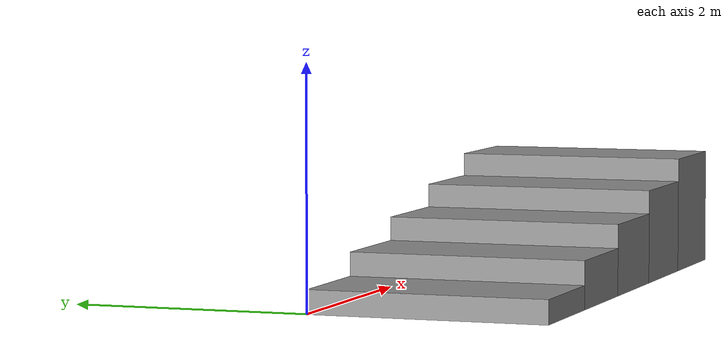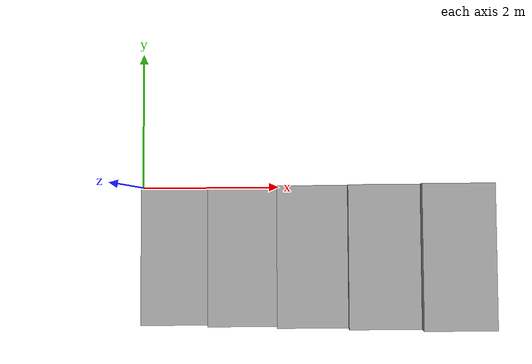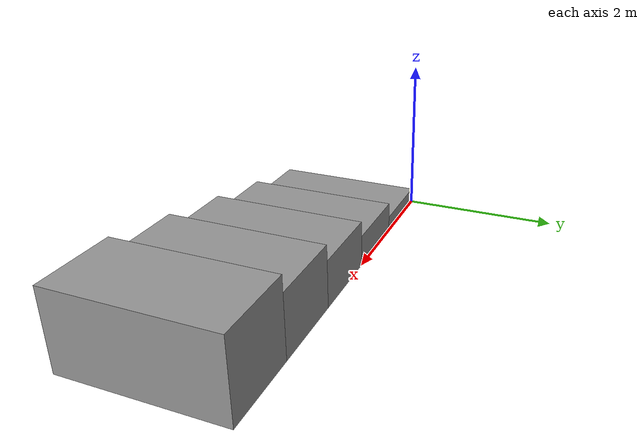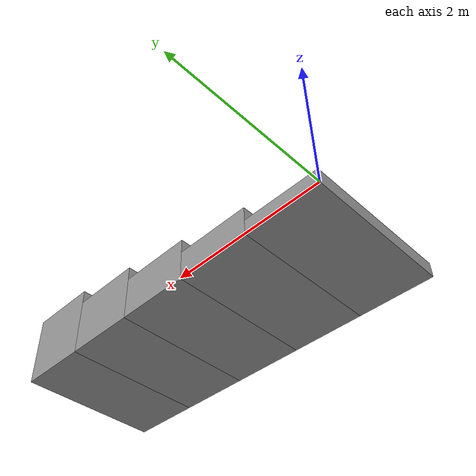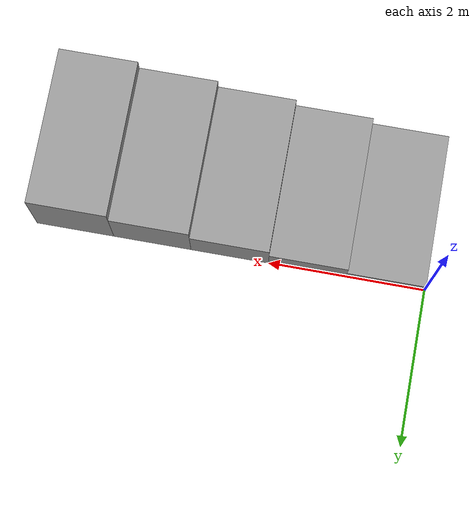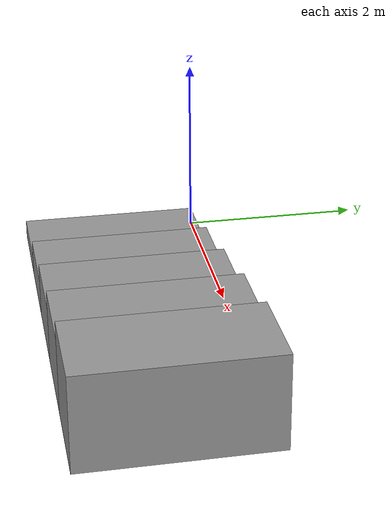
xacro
<?xml version="1.0" encoding="utf-8"?>

<robot xmlns:xacro="http://www.ros.org/wiki/xacro"  name="aaa">

  <xacro:include filename="$(find stairs_playground)/urdf/stairs_base.xacro"/>

  <xacro:arg name="stair_length" default = "1"   />
  <xacro:arg name="stair_width"  default = "2"   />
  <xacro:arg name="stair_height" default = "0.2" />
  <xacro:arg name="stair_num"    default = "5"   />

  <xacro:group_of_stairs num="5" stair_length="$(arg stair_length)" stair_width="$(arg stair_width)" stair_height="$(arg stair_height)"/>

</robot>

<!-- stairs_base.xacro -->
<robot xmlns:xacro="http://www.ros.org/wiki/xacro">

    <xacro:macro name="stairs" params="stairs xpos ypos zpos stair_length stair_width stair_height">

        <joint name="stair_joint_origin_${stairs}" type="fixed">
            <origin rpy="0 0 -1.570795" xyz="0 0 0"/>
            <parent link="base_link"/>
            <child link="stair_link_${stairs}"/>
        </joint>

        <link name="stair_link_${stairs}">
            <visual>
                <geometry>
                    <box size="${stair_width} ${stair_length} ${zpos*2}"/>
                </geometry>
                <material name="grey"/>
                <origin rpy="0 0 0" xyz="${xpos} ${ypos} ${zpos}"/>
            </visual>
            <collision>
                <geometry>
                    <box size="${stair_width} ${stair_length} ${zpos*2}"/>
                </geometry>
                <origin rpy="0 0 0" xyz="${xpos} ${ypos} ${zpos}"/>
            </collision>
            <inertial>
                <mass value="100"/>
                <inertia ixx="10" ixy="0" ixz="0" iyy="10" iyz="0" izz="1" />
                <origin rpy="0 0 0" xyz="${xpos} ${ypos} ${zpos}"/>
            </inertial>
        </link>

        <gazebo reference="stair_link_${stairs}">
            <mu1>0.1</mu1>
            <mu2>0.1</mu2>
        </gazebo>

        <xacro:if value="${stairs-1}">
            <xacro:stairs stairs="${stairs-1}" xpos="${stair_width/2}" ypos="${ypos+stair_length}" zpos="${zpos+stair_height/2}" stair_length="${stair_length}" stair_width="${stair_width}" stair_height="${stair_height}"/>
        </xacro:if>

    </xacro:macro>

    <xacro:macro name="group_of_stairs" params="num stair_width stair_length stair_height">
        <!--dummy base link-->
        <link name="base_link"/>
        <gazebo>
            <joint name ="weld" type="fixed">
                <parent>world</parent>
                <child>base_link</child> <!-- put here the name of the base link -->
                <maxContacts>0</maxContacts>
            </joint>
        </gazebo>
        <xacro:stairs stairs="${num}" xpos="${stair_width/2}" ypos="${stair_length/2}" zpos="${stair_height/2}" stair_length="${stair_length}" stair_width="${stair_width}" stair_height="${stair_height}"/>
    </xacro:macro>

</robot>
